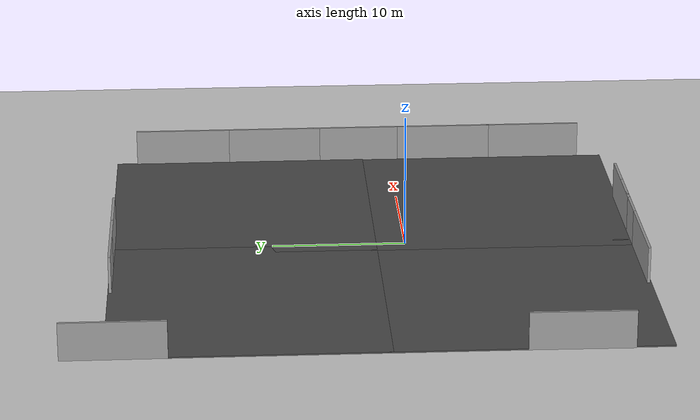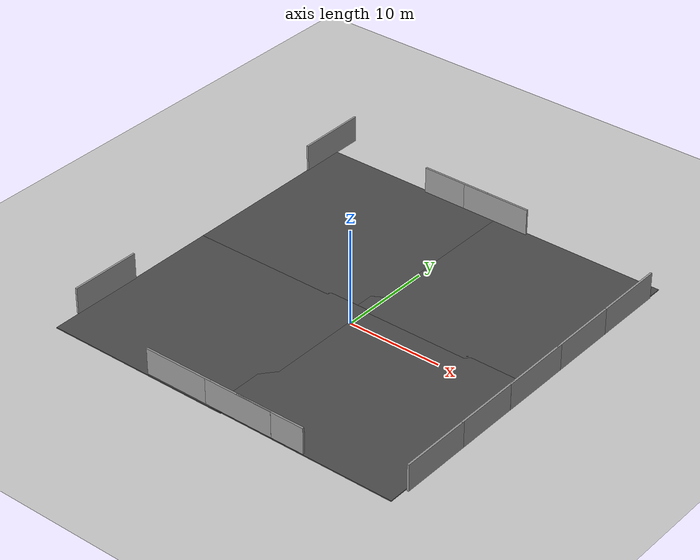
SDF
<sdf version="1.7">
 <world name="default">
  <model name="ground_plane">
   <static>1</static>
   <link name="link">
    <collision name="collision">
     <geometry><plane><normal>0 0 1</normal><size>100 100</size></plane></geometry>
     <surface><friction><ode><mu>100</mu><mu2>50</mu2></ode></friction></surface>
    </collision>
    <visual name="visual">
     <cast_shadows>0</cast_shadows>
     <geometry><plane><normal>0 0 1</normal><size>100 100</size></plane></geometry>
     <material>
      <script><uri>file://media/materials/scripts/gazebo.material</uri><name>Gazebo/Grey</name></script>
     </material>
    </visual>
   </link>
  </model>
  <model name="asphalt_plane">
   <static>1</static>
   <link name="link">
    <collision name="collision">
     <geometry><box><size>20 20 0.1</size></box></geometry>
     <surface><friction><ode><mu>100</mu><mu2>50</mu2></ode></friction></surface>
    </collision>
    <visual name="visual">
     <cast_shadows>0</cast_shadows>
     <geometry><box><size>20 20 0.1</size></box></geometry>
     <material>
      <script>
       <uri>model://asphalt_plane/materials/scripts</uri>
       <uri>model://asphalt_plane/materials/textures</uri>
       <name>vrc/asphalt</name>
      </script>
     </material>
    </visual>
   </link>
   <pose>-10.1692 -7.43707 0 0 -0 0</pose>
  </model>
  <model name="asphalt_plane_clone">
   <static>1</static>
   <link name="link">
    <collision name="collision">
     <geometry><box><size>20 20 0.1</size></box></geometry>
     <surface><friction><ode><mu>100</mu><mu2>50</mu2></ode></friction></surface>
    </collision>
    <visual name="visual">
     <cast_shadows>0</cast_shadows>
     <geometry><box><size>20 20 0.1</size></box></geometry>
     <material>
      <script>
       <uri>model://asphalt_plane/materials/scripts</uri>
       <uri>model://asphalt_plane/materials/textures</uri>
       <name>vrc/asphalt</name>
      </script>
     </material>
    </visual>
   </link>
   <pose>-10.1603 12.171 0 0 -0 0</pose>
  </model>
  <model name="asphalt_plane_clone_clone">
   <static>1</static>
   <link name="link">
    <collision name="collision">
     <geometry><box><size>20 20 0.1</size></box></geometry>
     <surface><friction><ode><mu>100</mu><mu2>50</mu2></ode></friction></surface>
    </collision>
    <visual name="visual">
     <cast_shadows>0</cast_shadows>
     <geometry><box><size>20 20 0.1</size></box></geometry>
     <material>
      <script>
       <uri>model://asphalt_plane/materials/scripts</uri>
       <uri>model://asphalt_plane/materials/textures</uri>
       <name>vrc/asphalt</name>
      </script>
     </material>
    </visual>
   </link>
   <pose>8.71597 12.1785 0 0 -0 0</pose>
  </model>
  <model name="asphalt_plane_clone_clone_0">
   <static>1</static>
   <link name="link">
    <collision name="collision">
     <geometry><box><size>20 20 0.1</size></box></geometry>
     <surface><friction><ode><mu>100</mu><mu2>50</mu2></ode></friction></surface>
    </collision>
    <visual name="visual">
     <cast_shadows>0</cast_shadows>
     <geometry><box><size>20 20 0.1</size></box></geometry>
     <material>
      <script>
       <uri>model://asphalt_plane/materials/scripts</uri>
       <uri>model://asphalt_plane/materials/textures</uri>
       <name>vrc/asphalt</name>
      </script>
     </material>
    </visual>
   </link>
   <pose>8.60996 -7.34898 0 0 -0 0</pose>
  </model>
  <model name="grey_wall">
   <static>1</static>
   <link name="link">
    <pose>0 0 1.4 0 -0 0</pose>
    <collision name="collision"><geometry><box><size>7.5 0.2 2.8</size></box></geometry></collision>
    <visual name="visual">
     <cast_shadows>0</cast_shadows>
     <geometry><box><size>7.5 0.2 2.8</size></box></geometry>
     <material>
      <script>
       <uri>model://grey_wall/materials/scripts</uri>
       <uri>model://grey_wall/materials/textures</uri>
       <name>vrc/grey_wall</name>
      </script>
     </material>
    </visual>
   </link>
   <pose>-5.16159 -17.208 0 0 -0 0</pose>
  </model>
  <model name="grey_wall_clone">
   <static>1</static>
   <link name="link">
    <pose>0 0 1.4 0 -0 0</pose>
    <collision name="collision"><geometry><box><size>7.5 0.2 2.8</size></box></geometry></collision>
    <visual name="visual">
     <cast_shadows>0</cast_shadows>
     <geometry><box><size>7.5 0.2 2.8</size></box></geometry>
     <material>
      <script>
       <uri>model://grey_wall/materials/scripts</uri>
       <uri>model://grey_wall/materials/textures</uri>
       <name>vrc/grey_wall</name>
      </script>
     </material>
    </visual>
   </link>
   <pose>1.72568 -17.2087 0 0 -0 0</pose>
  </model>
  <model name="grey_wall_clone_0">
   <static>1</static>
   <link name="link">
    <pose>0 0 1.4 0 -0 0</pose>
    <collision name="collision"><geometry><box><size>7.5 0.2 2.8</size></box></geometry></collision>
    <visual name="visual">
     <cast_shadows>0</cast_shadows>
     <geometry><box><size>7.5 0.2 2.8</size></box></geometry>
     <material>
      <script>
       <uri>model://grey_wall/materials/scripts</uri>
       <uri>model://grey_wall/materials/textures</uri>
       <name>vrc/grey_wall</name>
      </script>
     </material>
    </visual>
   </link>
   <pose>5.31108 -17.2047 0 0 -0 0</pose>
  </model>
  <model name="grey_wall_clone_clone">
   <static>1</static>
   <link name="link">
    <pose>0 0 1.4 0 -0 0</pose>
    <collision name="collision"><geometry><box><size>7.5 0.2 2.8</size></box></geometry></collision>
    <visual name="visual">
     <cast_shadows>0</cast_shadows>
     <geometry><box><size>7.5 0.2 2.8</size></box></geometry>
     <material>
      <script>
       <uri>model://grey_wall/materials/scripts</uri>
       <uri>model://grey_wall/materials/textures</uri>
       <name>vrc/grey_wall</name>
      </script>
     </material>
    </visual>
   </link>
   <pose>-4.79022 21.9838 0 0 -0 0</pose>
  </model>
  <model name="grey_wall_clone_clone_clone">
   <static>1</static>
   <link name="link">
    <pose>0 0 1.4 0 -0 0</pose>
    <collision name="collision"><geometry><box><size>7.5 0.2 2.8</size></box></geometry></collision>
    <visual name="visual">
     <cast_shadows>0</cast_shadows>
     <geometry><box><size>7.5 0.2 2.8</size></box></geometry>
     <material>
      <script>
       <uri>model://grey_wall/materials/scripts</uri>
       <uri>model://grey_wall/materials/textures</uri>
       <name>vrc/grey_wall</name>
      </script>
     </material>
    </visual>
   </link>
   <pose>18.7403 16.8165 0 0 0 -1.56734</pose>
  </model>
  <model name="grey_wall_clone_clone_clone_clone">
   <static>1</static>
   <link name="link">
    <pose>0 0 1.4 0 -0 0</pose>
    <collision name="collision"><geometry><box><size>7.5 0.2 2.8</size></box></geometry></collision>
    <visual name="visual">
     <cast_shadows>0</cast_shadows>
     <geometry><box><size>7.5 0.2 2.8</size></box></geometry>
     <material>
      <script>
       <uri>model://grey_wall/materials/scripts</uri>
       <uri>model://grey_wall/materials/textures</uri>
       <name>vrc/grey_wall</name>
      </script>
     </material>
    </visual>
   </link>
   <pose>18.767 9.41754 0 0 0 -1.56734</pose>
  </model>
  <model name="grey_wall_clone_clone_clone_clone_0">
   <static>1</static>
   <link name="link">
    <pose>0 0 1.4 0 -0 0</pose>
    <collision name="collision"><geometry><box><size>7.5 0.2 2.8</size></box></geometry></collision>
    <visual name="visual">
     <cast_shadows>0</cast_shadows>
     <geometry><box><size>7.5 0.2 2.8</size></box></geometry>
     <material>
      <script>
       <uri>model://grey_wall/materials/scripts</uri>
       <uri>model://grey_wall/materials/textures</uri>
       <name>vrc/grey_wall</name>
      </script>
     </material>
    </visual>
   </link>
   <pose>18.7963 2.45369 0 0 0 -1.56734</pose>
  </model>
  <model name="grey_wall_clone_clone_clone_clone_1">
   <static>1</static>
   <link name="link">
    <pose>0 0 1.4 0 -0 0</pose>
    <collision name="collision"><geometry><box><size>7.5 0.2 2.8</size></box></geometry></collision>
    <visual name="visual">
     <cast_shadows>0</cast_shadows>
     <geometry><box><size>7.5 0.2 2.8</size></box></geometry>
     <material>
      <script>
       <uri>model://grey_wall/materials/scripts</uri>
       <uri>model://grey_wall/materials/textures</uri>
       <name>vrc/grey_wall</name>
      </script>
     </material>
    </visual>
   </link>
   <pose>18.8058 -4.41342 0 0 0 -1.56734</pose>
  </model>
  <model name="grey_wall_clone_clone_clone_clone_2">
   <static>1</static>
   <link name="link">
    <pose>0 0 1.4 0 -0 0</pose>
    <collision name="collision"><geometry><box><size>7.5 0.2 2.8</size></box></geometry></collision>
    <visual name="visual">
     <cast_shadows>0</cast_shadows>
     <geometry><box><size>7.5 0.2 2.8</size></box></geometry>
     <material>
      <script>
       <uri>model://grey_wall/materials/scripts</uri>
       <uri>model://grey_wall/materials/textures</uri>
       <name>vrc/grey_wall</name>
      </script>
     </material>
    </visual>
   </link>
   <pose>18.8343 -11.7301 0 0 0 -1.56734</pose>
  </model>
  <light name="sun" type="directional">
   <pose>0 0 10 0 -0 0</pose>
   <diffuse>0.8 0.8 0.8 1</diffuse>
   <specular>0.2 0.2 0.2 1</specular>
   <attenuation>
    <range>1000</range>
    <constant>0.9</constant>
    <linear>0.01</linear>
    <quadratic>0.001</quadratic>
   </attenuation>
   <direction>-0.5 0.1 -0.9</direction>
   <spot><inner_angle>0</inner_angle><outer_angle>0</outer_angle><falloff>0</falloff></spot>
  </light>
  <gravity>0 0 -9.8</gravity>
  <magnetic_field>6e-06 2.3e-05 -4.2e-05</magnetic_field>
  <atmosphere type="adiabatic"/>
  <physics name="default_physics" default="0" type="ode">
   <max_step_size>0.001</max_step_size>
   <real_time_factor>1</real_time_factor>
   <real_time_update_rate>1000</real_time_update_rate>
  </physics>
  <scene><ambient>0.4 0.4 0.4 1</ambient><background>0.7 0.7 0.7 1</background><shadows>1</shadows></scene>
  <audio><device>default</device></audio>
  <spherical_coordinates>
   <surface_model>EARTH_WGS84</surface_model>
   <latitude_deg>47.8406</latitude_deg>
   <longitude_deg>10.6199</longitude_deg>
   <elevation>740</elevation>
   <heading_deg>180</heading_deg>
  </spherical_coordinates>
  <model name="grey_wall_clone_clone_clone_0">
   <static>1</static>
   <link name="link">
    <pose>0 0 1.4 0 -0 0</pose>
    <collision name="collision"><geometry><box><size>7.5 0.2 2.8</size></box></geometry></collision>
    <visual name="visual">
     <cast_shadows>0</cast_shadows>
     <geometry><box><size>7.5 0.2 2.8</size></box></geometry>
     <material>
      <script>
       <uri>model://grey_wall/materials/scripts</uri>
       <uri>model://grey_wall/materials/textures</uri>
       <name>vrc/grey_wall</name>
      </script>
     </material>
    </visual>
   </link>
   <pose>-0.052949 21.9806 0 0 -0 0</pose>
  </model>
  <model name="grey_wall_clone_1">
   <static>1</static>
   <link name="link">
    <pose>0 0 1.4 0 -0 0</pose>
    <collision name="collision"><geometry><box><size>7.5 0.2 2.8</size></box></geometry></collision>
    <visual name="visual">
     <cast_shadows>0</cast_shadows>
     <geometry><box><size>7.5 0.2 2.8</size></box></geometry>
     <material>
      <script>
       <uri>model://grey_wall/materials/scripts</uri>
       <uri>model://grey_wall/materials/textures</uri>
       <name>vrc/grey_wall</name>
      </script>
     </material>
    </visual>
   </link>
   <pose>-20.2187 -10.8904 0 0 -0 1.56123</pose>
  </model>
  <model name="grey_wall_clone_clone_clone_clone_1_clone">
   <static>1</static>
   <link name="link">
    <pose>0 0 1.4 0 -0 0</pose>
    <collision name="collision"><geometry><box><size>7.5 0.2 2.8</size></box></geometry></collision>
    <visual name="visual">
     <cast_shadows>0</cast_shadows>
     <geometry><box><size>7.5 0.2 2.8</size></box></geometry>
     <material>
      <script>
       <uri>model://grey_wall/materials/scripts</uri>
       <uri>model://grey_wall/materials/textures</uri>
       <name>vrc/grey_wall</name>
      </script>
     </material>
    </visual>
   </link>
   <pose>-20.1851 21.4243 0 0 0 -1.56734</pose>
  </model>
 </world>
</sdf>
